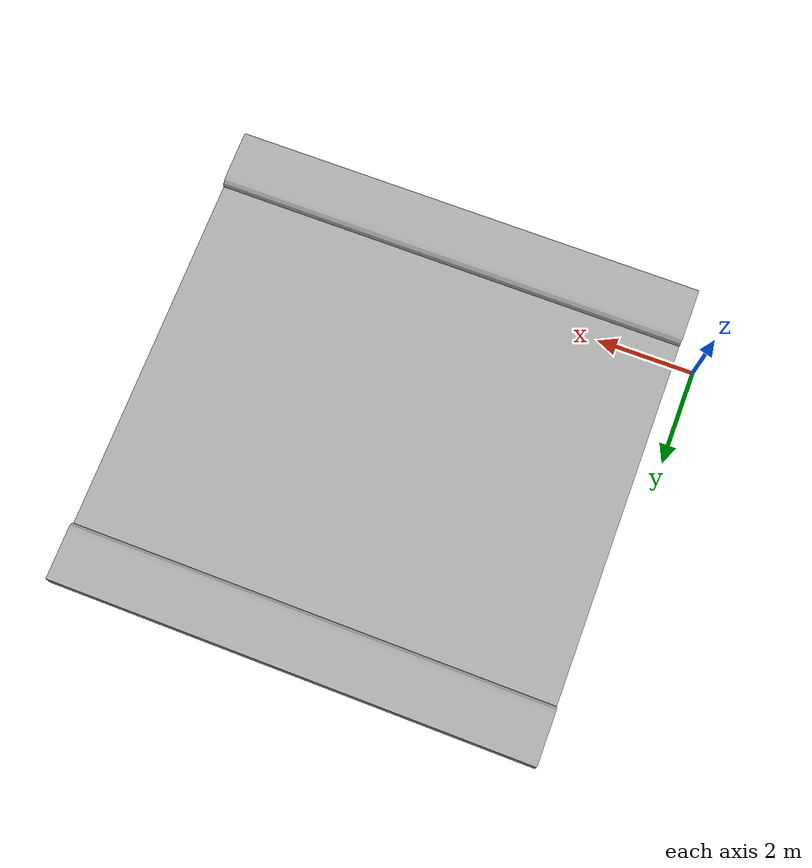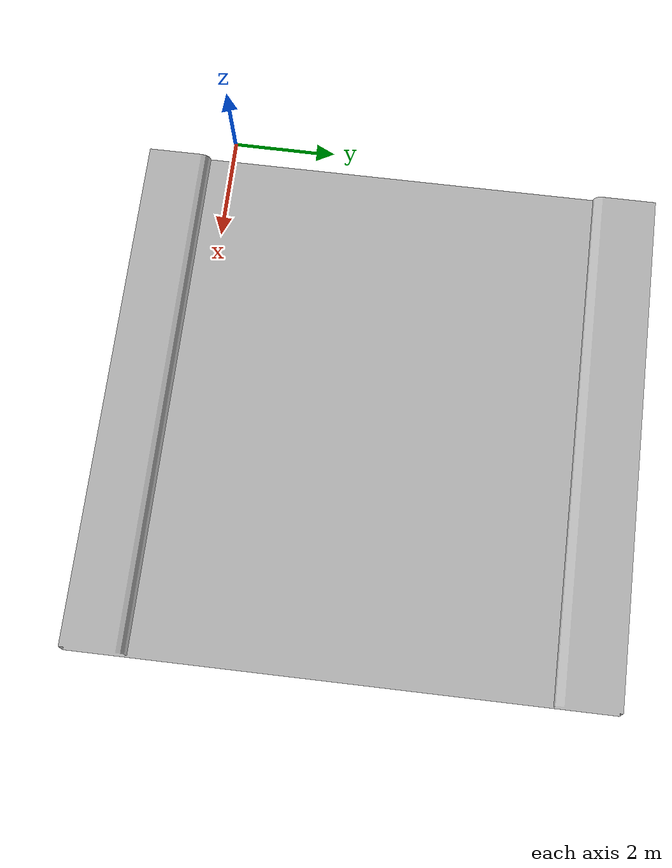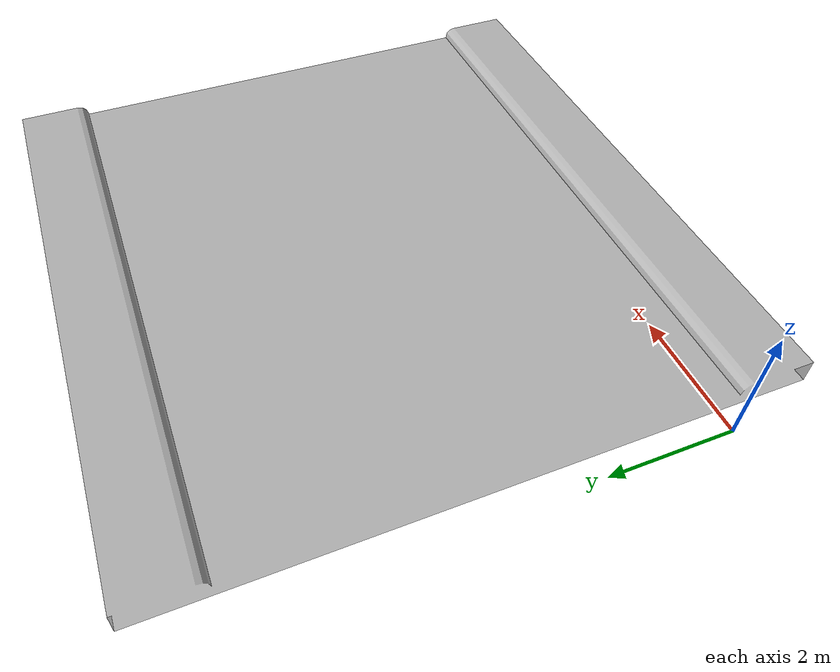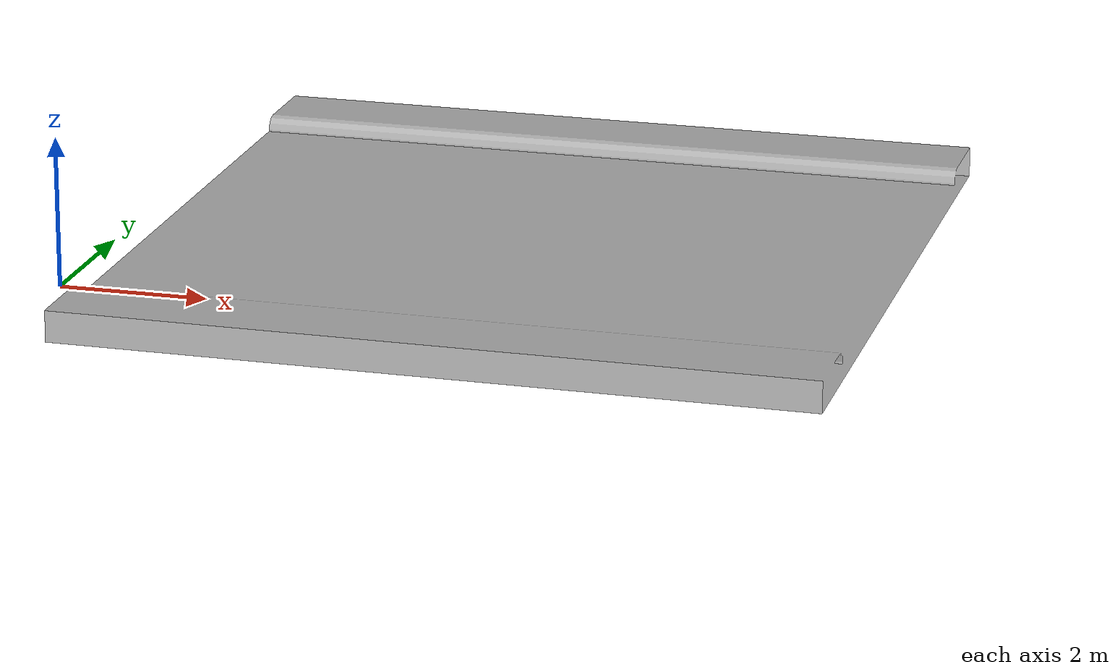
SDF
<?xml version="1.0"?>
<sdf version="1.4">
  <model name="road1">
    <static>true</static>
    <link name="link">
      <pose>0 0 0.05 0 0 0</pose>
      <collision name="collision">
        <geometry>
          <mesh>
             <uri>model://road1/models/road.dae</uri>
	     <scale>0.04 0.04 0.04</scale>
          </mesh>
        </geometry>
      </collision>
      <visual name="visual">
         <geometry>
          <mesh>
            <uri>model://road1/models/road.dae</uri>
		<scale>0.04 0.04 0.04</scale>
          </mesh>
        </geometry>
      </visual>
    </link>
  </model>
</sdf>
